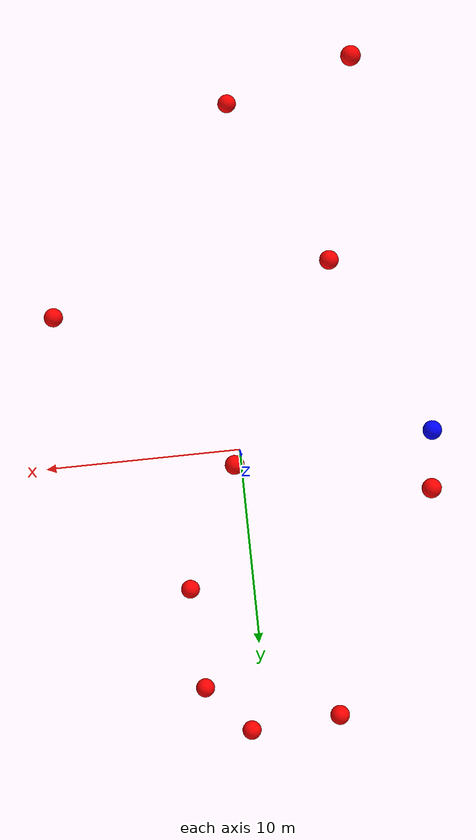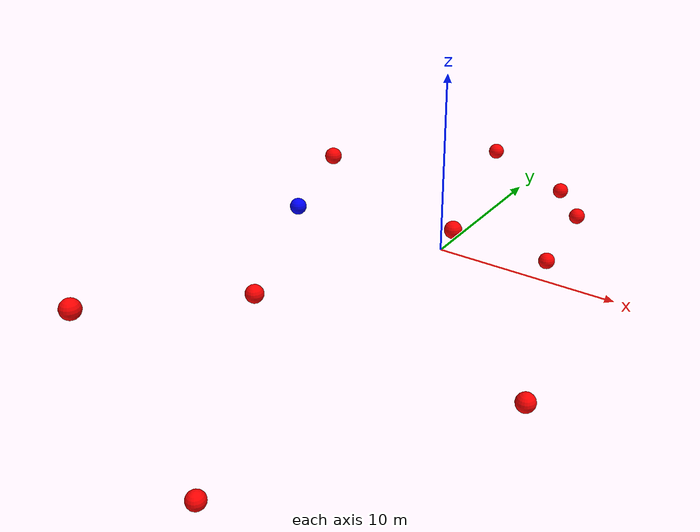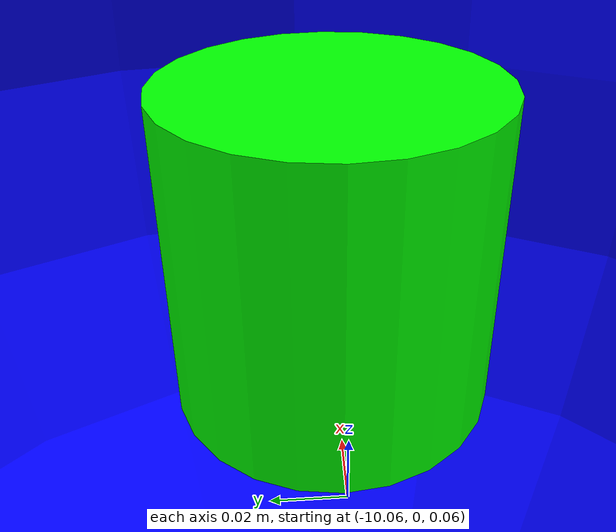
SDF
<?xml version="1.0" ?>
<sdf version="1.8">
    <world name="3d_world">
        <physics name="1ms" type="ode">
            <max_step_size>0.001</max_step_size>
            <real_time_factor>1.0</real_time_factor>
            <real_time_update_rate>1000.0</real_time_update_rate>
        </physics>
        <gravity>0 0 0</gravity>

        <plugin
            filename="gz-sim-physics-system"
            name="gz::sim::v8::systems::Physics">
        </plugin>
        <plugin
            filename="libignition-gazebo-user-commands-system.so"
            name="ignition::gazebo::systems::UserCommands">
        </plugin>
        <plugin
            filename="gz-sim-scene-broadcaster-system"
            name="gz::sim::systems::SceneBroadcaster">
        </plugin>
        <plugin
            filename="gz-sim-sensors-system"
            name="gz::sim::systems::Sensors">
            <render_engine>ogre2</render_engine>
        </plugin>

        <light type="directional" name="sun">
            <cast_shadows>true</cast_shadows>
            <pose>0 0 10 0 0 0</pose>
            <diffuse>0.8 0.8 0.8 1</diffuse>
            <specular>0.2 0.2 0.2 1</specular>
            <attenuation>
                <range>1000</range>
                <constant>0.9</constant>
                <linear>0.01</linear>
                <quadratic>0.001</quadratic>
            </attenuation>
            <direction>-0.5 0.1 -0.9</direction>
        </light>

        <!-- AGENTE -->
        <model name='agente' canonical_link='chassis'>
            <pose relative_to='world'>-10.0 0 0.0 0 0 0</pose>
            <link name='chassis'>
                <pose relative_to='__model__'>0.0 0 0.0 0 0 0</pose>
                <inertial>
                    <mass>1.14395</mass>
                    <inertia>
                        <ixx>0.095329</ixx>
                        <ixy>0</ixy>
                        <ixz>0</ixz>
                        <iyy>0.381317</iyy>
                        <iyz>0</iyz>
                        <izz>0.476646</izz>
                    </inertia>
                </inertial>
                <visual name='visual'>
                    <geometry>
                        <sphere>
                            <radius>0.5</radius>
                        </sphere>
                    </geometry>
                    <material>
                        <ambient>0.0 0.0 1.0 1</ambient>
                        <diffuse>0.0 0.0 1.0 1</diffuse>
                        <specular>0.0 0.0 1.0 1</specular>
                    </material>
                </visual>
                <collision name='collision'>
                    <geometry>
                        <sphere>
                            <radius>0.5</radius>
                        </sphere>
                    </geometry>
                </collision>
                <enable_gravity>false</enable_gravity>
            </link>

            <link name='lidar_link'>
                <pose relative_to='chassis'>0.0 0 0.1 0 0 0</pose>
                <inertial>
                    <mass>0.1</mass>
                    <inertia>
                        <ixx>0.000166667</ixx>
                        <iyy>0.000166667</iyy>
                        <izz>0.000166667</izz>
                    </inertia>
                </inertial>
                <collision name='collision'>
                    <geometry>
                        <cylinder>
                            <radius>0.05</radius>
                            <length>0.1</length>
                        </cylinder>
                    </geometry>
                </collision>
                <visual name='visual'>
                    <geometry>
                        <cylinder>
                            <radius>0.05</radius>
                            <length>0.1</length>
                        </cylinder>
                    </geometry>
                    <material>
                        <ambient>0.0 1.0 0.0 1</ambient>
                        <diffuse>0.0 1.0 0.0 1</diffuse>
                        <specular>0.0 1.0 0.0 1</specular>
                    </material>
                </visual>
                <sensor name="lidar" type="gpu_lidar">
                    <topic>scan</topic>
                    <update_rate>10</update_rate>
                    <lidar>
                        <scan>
                            <horizontal>
                                <samples>5000</samples>
                                <resolution>1</resolution>
                                <min_angle>-3.14159</min_angle>
                                <max_angle>3.14159</max_angle>
                            </horizontal>
                        </scan>
                        <range>
                            <min>0.1</min>
                            <max>10.0</max>
                            <resolution>0.01</resolution>
                        </range>
                    </lidar>
                    <visualize>true</visualize>
                    <always_on>true</always_on>
                    <update_rate>10</update_rate>
                    <pose_frame>lidar</pose_frame>
                </sensor>
                <enable_gravity>false</enable_gravity>
            </link>

            <joint name="lidar_joint" type="fixed">
                <parent>chassis</parent>
                <child>lidar_link</child>
            </joint>

            <plugin
                filename="ignition-gazebo-joint-state-publisher-system"
                name="ignition::gazebo::systems::JointStatePublisher">
            </plugin>
            <plugin
                filename="ignition-gazebo-odometry-publisher-system"
                name="ignition::gazebo::systems::OdometryPublisher">
                <dimensions>3</dimensions>
            </plugin>
            <plugin
                filename="ignition-gazebo-velocity-control-system"
                name="ignition::gazebo::systems::VelocityControl">
                <initial_linear>0.0 0 0</initial_linear>
                <initial_angular>0 0 0.0</initial_angular>
            </plugin>
            <plugin
                filename="libignition-gazebo-pose-publisher-system.so"
                name="ignition::gazebo::systems::PosePublisher">
                <topic>/agente/pose</topic>
                <frame_id>agente</frame_id>
                <update_rate>30</update_rate>
            </plugin>
        </model>

        <!-- OBSTACLE 1 -->
        <model name='obstacle_1' canonical_link='obstacle'>
            <static>false</static>
            <pose relative_to='world'>3.08 12.48 -2.25 0 0 0</pose>
            <link name='obstacle'>
                <pose relative_to='__model__'>0.0 0 0.0 0 0 0</pose>
                <visual name='visual'>
                    <geometry>
                        <sphere>
                            <radius>0.50</radius>
                        </sphere>
                    </geometry>
                    <material>
                        <ambient>1.0 0.0 0.0 1</ambient>
                        <diffuse>1.0 0.0 0.0 1</diffuse>
                        <specular>1.0 0.0 0.0 1</specular>
                    </material>
                </visual>
                <collision name='collision'>
                    <geometry>
                        <sphere>
                            <radius>0.50</radius>
                        </sphere>
                    </geometry>
                </collision>
                <enable_gravity>false</enable_gravity>
            </link>

            <plugin
                filename="ignition-gazebo-velocity-control-system"
                name="ignition::gazebo::systems::VelocityControl">
                <initial_linear>-0.33 -1.94 0.35</initial_linear>
                <initial_angular>0 0 0</initial_angular>
            </plugin>

            <plugin
                filename="ignition-gazebo-odometry-publisher-system"
                name="ignition::gazebo::systems::OdometryPublisher">
                <dimensions>3</dimensions>
            </plugin>
        </model>

        <!-- OBSTACLE 2 -->
        <model name='obstacle_2' canonical_link='obstacle'>
            <static>false</static>
            <pose relative_to='world'>-1.27 -18.75 -4.32 0 0 0</pose>
            <link name='obstacle'>
                <pose relative_to='__model__'>0.0 0 0.0 0 0 0</pose>
                <visual name='visual'>
                    <geometry>
                        <sphere>
                            <radius>0.50</radius>
                        </sphere>
                    </geometry>
                    <material>
                        <ambient>1.0 0.0 0.0 1</ambient>
                        <diffuse>1.0 0.0 0.0 1</diffuse>
                        <specular>1.0 0.0 0.0 1</specular>
                    </material>
                </visual>
                <collision name='collision'>
                    <geometry>
                        <sphere>
                            <radius>0.50</radius>
                        </sphere>
                    </geometry>
                </collision>
                <enable_gravity>false</enable_gravity>
            </link>

            <plugin
                filename="ignition-gazebo-velocity-control-system"
                name="ignition::gazebo::systems::VelocityControl">
                <initial_linear>-0.22 1.94 0.45</initial_linear>
                <initial_angular>0 0 0</initial_angular>
            </plugin>

            <plugin
                filename="ignition-gazebo-odometry-publisher-system"
                name="ignition::gazebo::systems::OdometryPublisher">
                <dimensions>3</dimensions>
            </plugin>
        </model>

        <!-- OBSTACLE 3 -->
        <model name='obstacle_3' canonical_link='obstacle'>
            <static>false</static>
            <pose relative_to='world'>9.04 -7.89 -1.61 0 0 0</pose>
            <link name='obstacle'>
                <pose relative_to='__model__'>0.0 0 0.0 0 0 0</pose>
                <visual name='visual'>
                    <geometry>
                        <sphere>
                            <radius>0.50</radius>
                        </sphere>
                    </geometry>
                    <material>
                        <ambient>1.0 0.0 0.0 1</ambient>
                        <diffuse>1.0 0.0 0.0 1</diffuse>
                        <specular>1.0 0.0 0.0 1</specular>
                    </material>
                </visual>
                <collision name='collision'>
                    <geometry>
                        <sphere>
                            <radius>0.50</radius>
                        </sphere>
                    </geometry>
                </collision>
                <enable_gravity>false</enable_gravity>
            </link>

            <plugin
                filename="ignition-gazebo-velocity-control-system"
                name="ignition::gazebo::systems::VelocityControl">
                <initial_linear>-1.64 1.12 0.23</initial_linear>
                <initial_angular>0 0 0</initial_angular>
            </plugin>

            <plugin
                filename="ignition-gazebo-odometry-publisher-system"
                name="ignition::gazebo::systems::OdometryPublisher">
                <dimensions>3</dimensions>
            </plugin>
        </model>

        <!-- OBSTACLE 4 -->
        <model name='obstacle_4' canonical_link='obstacle'>
            <static>false</static>
            <pose relative_to='world'>-3.75 14.09 0.20 0 0 0</pose>
            <link name='obstacle'>
                <pose relative_to='__model__'>0.0 0 0.0 0 0 0</pose>
                <visual name='visual'>
                    <geometry>
                        <sphere>
                            <radius>0.50</radius>
                        </sphere>
                    </geometry>
                    <material>
                        <ambient>1.0 0.0 0.0 1</ambient>
                        <diffuse>1.0 0.0 0.0 1</diffuse>
                        <specular>1.0 0.0 0.0 1</specular>
                    </material>
                </visual>
                <collision name='collision'>
                    <geometry>
                        <sphere>
                            <radius>0.50</radius>
                        </sphere>
                    </geometry>
                </collision>
                <enable_gravity>false</enable_gravity>
            </link>

            <plugin
                filename="ignition-gazebo-velocity-control-system"
                name="ignition::gazebo::systems::VelocityControl">
                <initial_linear>0.13 -2.00 -0.03</initial_linear>
                <initial_angular>0 0 0</initial_angular>
            </plugin>

            <plugin
                filename="ignition-gazebo-odometry-publisher-system"
                name="ignition::gazebo::systems::OdometryPublisher">
                <dimensions>3</dimensions>
            </plugin>
        </model>

        <!-- OBSTACLE 5 -->
        <model name='obstacle_5' canonical_link='obstacle'>
            <static>false</static>
            <pose relative_to='world'>-5.60 -9.29 -0.06 0 0 0</pose>
            <link name='obstacle'>
                <pose relative_to='__model__'>0.0 0 0.0 0 0 0</pose>
                <visual name='visual'>
                    <geometry>
                        <sphere>
                            <radius>0.50</radius>
                        </sphere>
                    </geometry>
                    <material>
                        <ambient>1.0 0.0 0.0 1</ambient>
                        <diffuse>1.0 0.0 0.0 1</diffuse>
                        <specular>1.0 0.0 0.0 1</specular>
                    </material>
                </visual>
                <collision name='collision'>
                    <geometry>
                        <sphere>
                            <radius>0.50</radius>
                        </sphere>
                    </geometry>
                </collision>
                <enable_gravity>false</enable_gravity>
            </link>

            <plugin
                filename="ignition-gazebo-velocity-control-system"
                name="ignition::gazebo::systems::VelocityControl">
                <initial_linear>1.13 1.65 0.01</initial_linear>
                <initial_angular>0 0 0</initial_angular>
            </plugin>

            <plugin
                filename="ignition-gazebo-odometry-publisher-system"
                name="ignition::gazebo::systems::OdometryPublisher">
                <dimensions>3</dimensions>
            </plugin>
        </model>

        <!-- OBSTACLE 6 -->
        <model name='obstacle_6' canonical_link='obstacle'>
            <static>false</static>
            <pose relative_to='world'>3.37 7.28 -3.07 0 0 0</pose>
            <link name='obstacle'>
                <pose relative_to='__model__'>0.0 0 0.0 0 0 0</pose>
                <visual name='visual'>
                    <geometry>
                        <sphere>
                            <radius>0.50</radius>
                        </sphere>
                    </geometry>
                    <material>
                        <ambient>1.0 0.0 0.0 1</ambient>
                        <diffuse>1.0 0.0 0.0 1</diffuse>
                        <specular>1.0 0.0 0.0 1</specular>
                    </material>
                </visual>
                <collision name='collision'>
                    <geometry>
                        <sphere>
                            <radius>0.50</radius>
                        </sphere>
                    </geometry>
                </collision>
                <enable_gravity>false</enable_gravity>
            </link>

            <plugin
                filename="ignition-gazebo-velocity-control-system"
                name="ignition::gazebo::systems::VelocityControl">
                <initial_linear>-1.44 -1.28 0.54</initial_linear>
                <initial_angular>0 0 0</initial_angular>
            </plugin>

            <plugin
                filename="ignition-gazebo-odometry-publisher-system"
                name="ignition::gazebo::systems::OdometryPublisher">
                <dimensions>3</dimensions>
            </plugin>
        </model>

        <!-- OBSTACLE 7 -->
        <model name='obstacle_7' canonical_link='obstacle'>
            <static>false</static>
            <pose relative_to='world'>-9.32 2.80 2.48 0 0 0</pose>
            <link name='obstacle'>
                <pose relative_to='__model__'>0.0 0 0.0 0 0 0</pose>
                <visual name='visual'>
                    <geometry>
                        <sphere>
                            <radius>0.50</radius>
                        </sphere>
                    </geometry>
                    <material>
                        <ambient>1.0 0.0 0.0 1</ambient>
                        <diffuse>1.0 0.0 0.0 1</diffuse>
                        <specular>1.0 0.0 0.0 1</specular>
                    </material>
                </visual>
                <collision name='collision'>
                    <geometry>
                        <sphere>
                            <radius>0.50</radius>
                        </sphere>
                    </geometry>
                </collision>
                <enable_gravity>false</enable_gravity>
            </link>

            <plugin
                filename="ignition-gazebo-velocity-control-system"
                name="ignition::gazebo::systems::VelocityControl">
                <initial_linear>1.89 -0.48 -0.43</initial_linear>
                <initial_angular>0 0 0</initial_angular>
            </plugin>

            <plugin
                filename="ignition-gazebo-odometry-publisher-system"
                name="ignition::gazebo::systems::OdometryPublisher">
                <dimensions>3</dimensions>
            </plugin>
        </model>

        <!-- OBSTACLE 8 -->
        <model name='obstacle_8' canonical_link='obstacle'>
            <static>false</static>
            <pose relative_to='world'>-7.40 -18.85 3.41 0 0 0</pose>
            <link name='obstacle'>
                <pose relative_to='__model__'>0.0 0 0.0 0 0 0</pose>
                <visual name='visual'>
                    <geometry>
                        <sphere>
                            <radius>0.50</radius>
                        </sphere>
                    </geometry>
                    <material>
                        <ambient>1.0 0.0 0.0 1</ambient>
                        <diffuse>1.0 0.0 0.0 1</diffuse>
                        <specular>1.0 0.0 0.0 1</specular>
                    </material>
                </visual>
                <collision name='collision'>
                    <geometry>
                        <sphere>
                            <radius>0.50</radius>
                        </sphere>
                    </geometry>
                </collision>
                <enable_gravity>false</enable_gravity>
            </link>

            <plugin
                filename="ignition-gazebo-velocity-control-system"
                name="ignition::gazebo::systems::VelocityControl">
                <initial_linear>1.05 1.67 -0.30</initial_linear>
                <initial_angular>0 0 0</initial_angular>
            </plugin>

            <plugin
                filename="ignition-gazebo-odometry-publisher-system"
                name="ignition::gazebo::systems::OdometryPublisher">
                <dimensions>3</dimensions>
            </plugin>
        </model>

        <!-- OBSTACLE 9 -->
        <model name='obstacle_9' canonical_link='obstacle'>
            <static>false</static>
            <pose relative_to='world'>0.33 0.70 1.02 0 0 0</pose>
            <link name='obstacle'>
                <pose relative_to='__model__'>0.0 0 0.0 0 0 0</pose>
                <visual name='visual'>
                    <geometry>
                        <sphere>
                            <radius>0.50</radius>
                        </sphere>
                    </geometry>
                    <material>
                        <ambient>1.0 0.0 0.0 1</ambient>
                        <diffuse>1.0 0.0 0.0 1</diffuse>
                        <specular>1.0 0.0 0.0 1</specular>
                    </material>
                </visual>
                <collision name='collision'>
                    <geometry>
                        <sphere>
                            <radius>0.50</radius>
                        </sphere>
                    </geometry>
                </collision>
                <enable_gravity>false</enable_gravity>
            </link>

            <plugin
                filename="ignition-gazebo-velocity-control-system"
                name="ignition::gazebo::systems::VelocityControl">
                <initial_linear>0.76 -0.12 -0.17</initial_linear>
                <initial_angular>0 0 0</initial_angular>
            </plugin>

            <plugin
                filename="ignition-gazebo-odometry-publisher-system"
                name="ignition::gazebo::systems::OdometryPublisher">
                <dimensions>3</dimensions>
            </plugin>
        </model>

        <!-- OBSTACLE 10 -->
        <model name='obstacle_10' canonical_link='obstacle'>
            <static>false</static>
            <pose relative_to='world'>0.85 14.89 -1.92 0 0 0</pose>
            <link name='obstacle'>
                <pose relative_to='__model__'>0.0 0 0.0 0 0 0</pose>
                <visual name='visual'>
                    <geometry>
                        <sphere>
                            <radius>0.50</radius>
                        </sphere>
                    </geometry>
                    <material>
                        <ambient>1.0 0.0 0.0 1</ambient>
                        <diffuse>1.0 0.0 0.0 1</diffuse>
                        <specular>1.0 0.0 0.0 1</specular>
                    </material>
                </visual>
                <collision name='collision'>
                    <geometry>
                        <sphere>
                            <radius>0.50</radius>
                        </sphere>
                    </geometry>
                </collision>
                <enable_gravity>false</enable_gravity>
            </link>

            <plugin
                filename="ignition-gazebo-velocity-control-system"
                name="ignition::gazebo::systems::VelocityControl">
                <initial_linear>-0.66 -1.87 0.24</initial_linear>
                <initial_angular>0 0 0</initial_angular>
            </plugin>

            <plugin
                filename="ignition-gazebo-odometry-publisher-system"
                name="ignition::gazebo::systems::OdometryPublisher">
                <dimensions>3</dimensions>
            </plugin>
        </model>

    </world>
</sdf>
